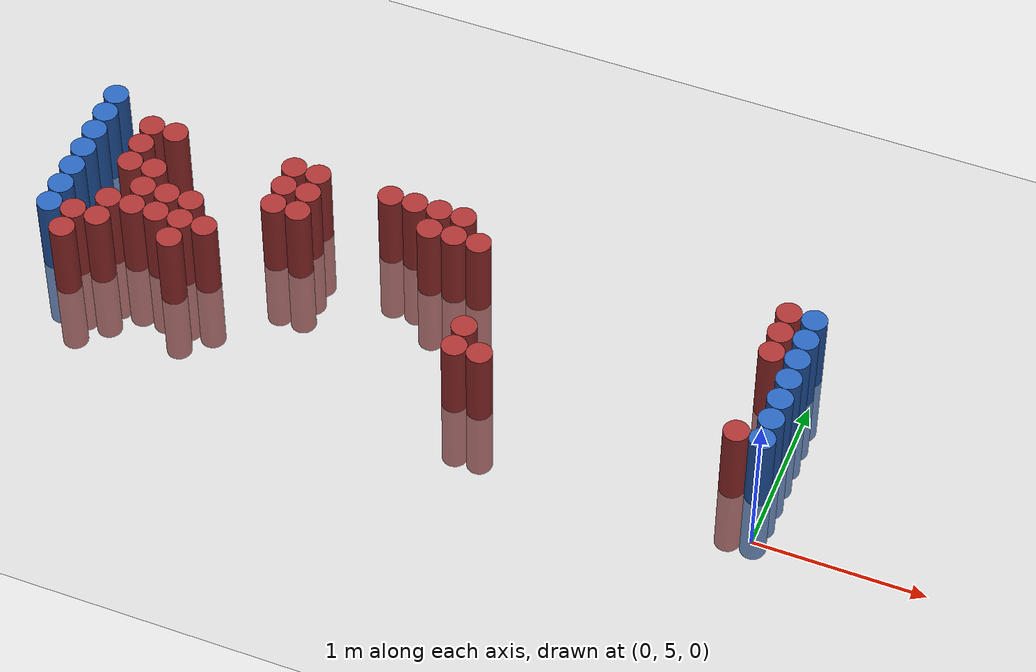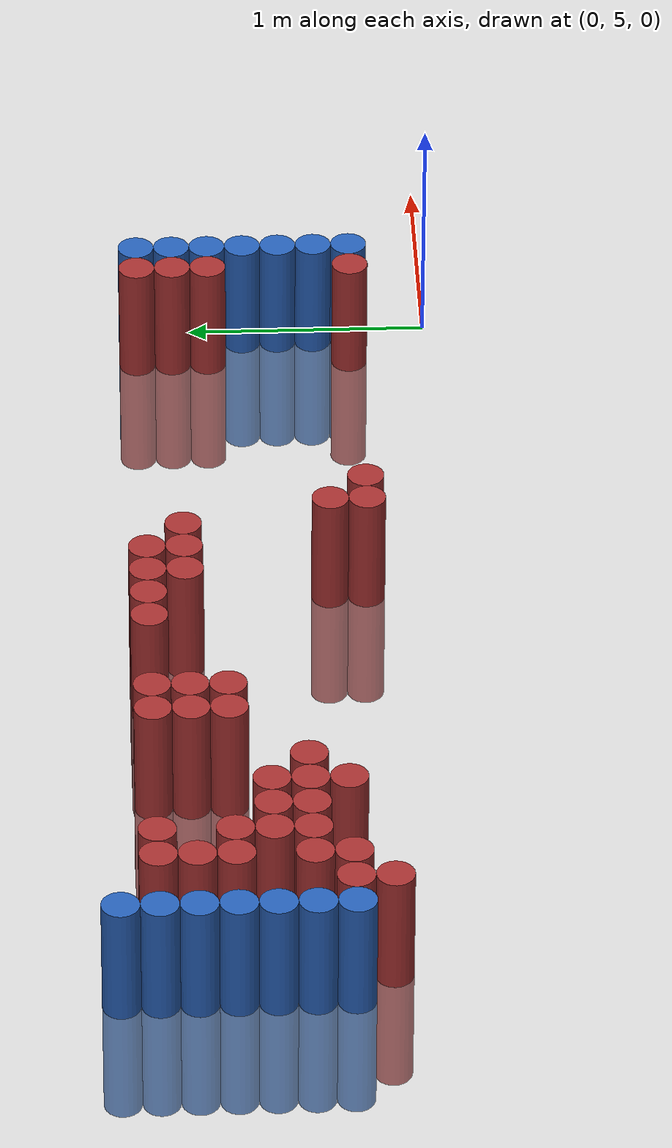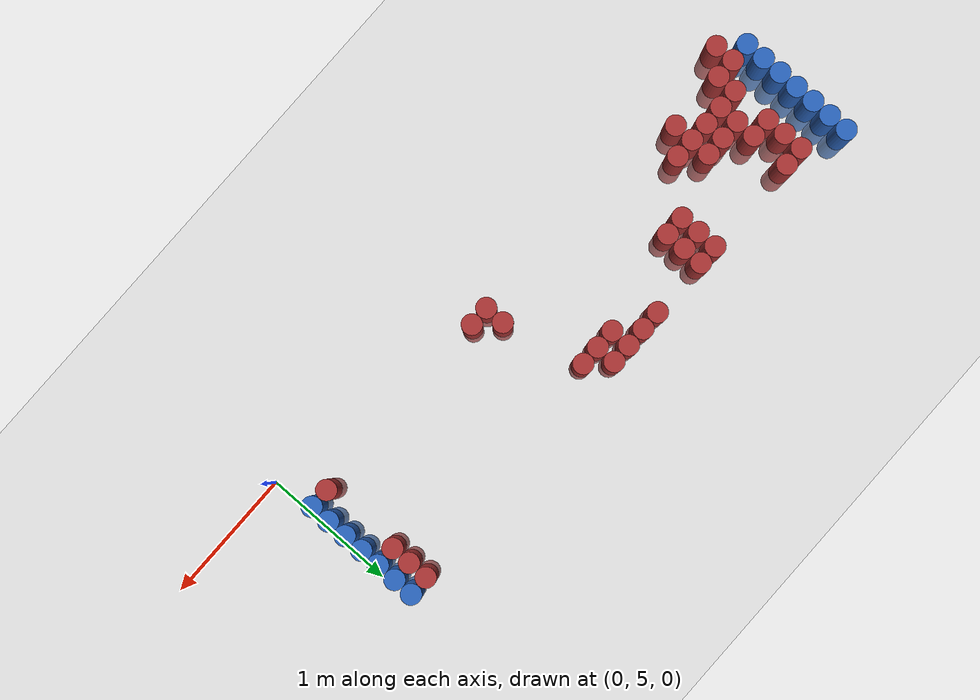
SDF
<sdf version="1.6">
 <world name="default">
  <model name="ground_plane">
   <static>1</static>
   <link name="link">
    <collision name="collision">
     <geometry><plane><normal>0 0 1</normal><size>100 100</size></plane></geometry>
     <surface><friction><ode><mu>100</mu><mu2>50</mu2></ode></friction></surface>
    </collision>
    <visual name="visual">
     <cast_shadows>0</cast_shadows>
     <geometry><plane><normal>0 0 1</normal><size>100 100</size></plane></geometry>
     <material>
      <script><uri>file://media/materials/scripts/gazebo.material</uri><name>Gazebo/Grey</name></script>
     </material>
    </visual>
   </link>
  </model>
  <model name="unit_cylinder_98">
   <static>1</static>
   <pose>-4.425000 5.475000 0.000000 0.000000 0.000000 0.000000</pose>
   <link name="link">
    <inertial>
     <mass>1</mass>
     <inertia><ixx>0.145833</ixx><ixy>0</ixy><ixz>0</ixz><iyy>0.145833</iyy><iyz>0</iyz><izz>0.125</izz></inertia>
    </inertial>
    <collision name="collision">
     <geometry><cylinder><radius>0.075000</radius><length>1</length></cylinder></geometry>
    </collision>
    <visual name="visual">
     <geometry><cylinder><radius>0.075000</radius><length>1</length></cylinder></geometry>
     <material>
      <ambient>0.152000 0.379000 0.720000 1</ambient>
      <diffuse>0.152000 0.379000 0.720000 1</diffuse>
     </material>
     <material>
      <script><name>Gazebo/Grey</name><uri>file://media/materials/scripts/gazebo.material</uri></script>
     </material>
    </visual>
   </link>
  </model>
  <model name="unit_cylinder_99">
   <static>1</static>
   <pose>-4.425000 5.625000 0.000000 0.000000 0.000000 0.000000</pose>
   <link name="link">
    <inertial>
     <mass>1</mass>
     <inertia><ixx>0.145833</ixx><ixy>0</ixy><ixz>0</ixz><iyy>0.145833</iyy><iyz>0</iyz><izz>0.125</izz></inertia>
    </inertial>
    <collision name="collision">
     <geometry><cylinder><radius>0.075000</radius><length>1</length></cylinder></geometry>
    </collision>
    <visual name="visual">
     <geometry><cylinder><radius>0.075000</radius><length>1</length></cylinder></geometry>
     <material>
      <ambient>0.152000 0.379000 0.720000 1</ambient>
      <diffuse>0.152000 0.379000 0.720000 1</diffuse>
     </material>
     <material>
      <script><name>Gazebo/Grey</name><uri>file://media/materials/scripts/gazebo.material</uri></script>
     </material>
    </visual>
   </link>
  </model>
  <model name="unit_cylinder_100">
   <static>1</static>
   <pose>-4.425000 5.775000 0.000000 0.000000 0.000000 0.000000</pose>
   <link name="link">
    <inertial>
     <mass>1</mass>
     <inertia><ixx>0.145833</ixx><ixy>0</ixy><ixz>0</ixz><iyy>0.145833</iyy><iyz>0</iyz><izz>0.125</izz></inertia>
    </inertial>
    <collision name="collision">
     <geometry><cylinder><radius>0.075000</radius><length>1</length></cylinder></geometry>
    </collision>
    <visual name="visual">
     <geometry><cylinder><radius>0.075000</radius><length>1</length></cylinder></geometry>
     <material>
      <ambient>0.152000 0.379000 0.720000 1</ambient>
      <diffuse>0.152000 0.379000 0.720000 1</diffuse>
     </material>
     <material>
      <script><name>Gazebo/Grey</name><uri>file://media/materials/scripts/gazebo.material</uri></script>
     </material>
    </visual>
   </link>
  </model>
  <model name="unit_cylinder_101">
   <static>1</static>
   <pose>-4.425000 5.925000 0.000000 0.000000 0.000000 0.000000</pose>
   <link name="link">
    <inertial>
     <mass>1</mass>
     <inertia><ixx>0.145833</ixx><ixy>0</ixy><ixz>0</ixz><iyy>0.145833</iyy><iyz>0</iyz><izz>0.125</izz></inertia>
    </inertial>
    <collision name="collision">
     <geometry><cylinder><radius>0.075000</radius><length>1</length></cylinder></geometry>
    </collision>
    <visual name="visual">
     <geometry><cylinder><radius>0.075000</radius><length>1</length></cylinder></geometry>
     <material>
      <ambient>0.152000 0.379000 0.720000 1</ambient>
      <diffuse>0.152000 0.379000 0.720000 1</diffuse>
     </material>
     <material>
      <script><name>Gazebo/Grey</name><uri>file://media/materials/scripts/gazebo.material</uri></script>
     </material>
    </visual>
   </link>
  </model>
  <model name="unit_cylinder_102">
   <static>1</static>
   <pose>-4.425000 6.075000 0.000000 0.000000 0.000000 0.000000</pose>
   <link name="link">
    <inertial>
     <mass>1</mass>
     <inertia><ixx>0.145833</ixx><ixy>0</ixy><ixz>0</ixz><iyy>0.145833</iyy><iyz>0</iyz><izz>0.125</izz></inertia>
    </inertial>
    <collision name="collision">
     <geometry><cylinder><radius>0.075000</radius><length>1</length></cylinder></geometry>
    </collision>
    <visual name="visual">
     <geometry><cylinder><radius>0.075000</radius><length>1</length></cylinder></geometry>
     <material>
      <ambient>0.152000 0.379000 0.720000 1</ambient>
      <diffuse>0.152000 0.379000 0.720000 1</diffuse>
     </material>
     <material>
      <script><name>Gazebo/Grey</name><uri>file://media/materials/scripts/gazebo.material</uri></script>
     </material>
    </visual>
   </link>
  </model>
  <model name="unit_cylinder_103">
   <static>1</static>
   <pose>-4.425000 6.225000 0.000000 0.000000 0.000000 0.000000</pose>
   <link name="link">
    <inertial>
     <mass>1</mass>
     <inertia><ixx>0.145833</ixx><ixy>0</ixy><ixz>0</ixz><iyy>0.145833</iyy><iyz>0</iyz><izz>0.125</izz></inertia>
    </inertial>
    <collision name="collision">
     <geometry><cylinder><radius>0.075000</radius><length>1</length></cylinder></geometry>
    </collision>
    <visual name="visual">
     <geometry><cylinder><radius>0.075000</radius><length>1</length></cylinder></geometry>
     <material>
      <ambient>0.152000 0.379000 0.720000 1</ambient>
      <diffuse>0.152000 0.379000 0.720000 1</diffuse>
     </material>
     <material>
      <script><name>Gazebo/Grey</name><uri>file://media/materials/scripts/gazebo.material</uri></script>
     </material>
    </visual>
   </link>
  </model>
  <model name="unit_cylinder_104">
   <static>1</static>
   <pose>-4.425000 6.375000 0.000000 0.000000 0.000000 0.000000</pose>
   <link name="link">
    <inertial>
     <mass>1</mass>
     <inertia><ixx>0.145833</ixx><ixy>0</ixy><ixz>0</ixz><iyy>0.145833</iyy><iyz>0</iyz><izz>0.125</izz></inertia>
    </inertial>
    <collision name="collision">
     <geometry><cylinder><radius>0.075000</radius><length>1</length></cylinder></geometry>
    </collision>
    <visual name="visual">
     <geometry><cylinder><radius>0.075000</radius><length>1</length></cylinder></geometry>
     <material>
      <ambient>0.152000 0.379000 0.720000 1</ambient>
      <diffuse>0.152000 0.379000 0.720000 1</diffuse>
     </material>
     <material>
      <script><name>Gazebo/Grey</name><uri>file://media/materials/scripts/gazebo.material</uri></script>
     </material>
    </visual>
   </link>
  </model>
  <model name="unit_cylinder_126">
   <static>1</static>
   <pose>-4.275000 5.325000 0.000000 0.000000 0.000000 0.000000</pose>
   <link name="link">
    <inertial>
     <mass>1</mass>
     <inertia><ixx>0.145833</ixx><ixy>0</ixy><ixz>0</ixz><iyy>0.145833</iyy><iyz>0</iyz><izz>0.125</izz></inertia>
    </inertial>
    <collision name="collision">
     <geometry><cylinder><radius>0.075000</radius><length>1</length></cylinder></geometry>
    </collision>
    <visual name="visual">
     <geometry><cylinder><radius>0.075000</radius><length>1</length></cylinder></geometry>
     <material>
      <ambient>0.648000 0.192000 0.192000 1</ambient>
      <diffuse>0.648000 0.192000 0.192000 1</diffuse>
     </material>
     <material>
      <script><name>Gazebo/Grey</name><uri>file://media/materials/scripts/gazebo.material</uri></script>
     </material>
    </visual>
   </link>
  </model>
  <model name="unit_cylinder_127">
   <static>1</static>
   <pose>-4.275000 5.475000 0.000000 0.000000 0.000000 0.000000</pose>
   <link name="link">
    <inertial>
     <mass>1</mass>
     <inertia><ixx>0.145833</ixx><ixy>0</ixy><ixz>0</ixz><iyy>0.145833</iyy><iyz>0</iyz><izz>0.125</izz></inertia>
    </inertial>
    <collision name="collision">
     <geometry><cylinder><radius>0.075000</radius><length>1</length></cylinder></geometry>
    </collision>
    <visual name="visual">
     <geometry><cylinder><radius>0.075000</radius><length>1</length></cylinder></geometry>
     <material>
      <ambient>0.648000 0.192000 0.192000 1</ambient>
      <diffuse>0.648000 0.192000 0.192000 1</diffuse>
     </material>
     <material>
      <script><name>Gazebo/Grey</name><uri>file://media/materials/scripts/gazebo.material</uri></script>
     </material>
    </visual>
   </link>
  </model>
  <model name="unit_cylinder_141">
   <static>1</static>
   <pose>-4.125000 5.475000 0.000000 0.000000 0.000000 0.000000</pose>
   <link name="link">
    <inertial>
     <mass>1</mass>
     <inertia><ixx>0.145833</ixx><ixy>0</ixy><ixz>0</ixz><iyy>0.145833</iyy><iyz>0</iyz><izz>0.125</izz></inertia>
    </inertial>
    <collision name="collision">
     <geometry><cylinder><radius>0.075000</radius><length>1</length></cylinder></geometry>
    </collision>
    <visual name="visual">
     <geometry><cylinder><radius>0.075000</radius><length>1</length></cylinder></geometry>
     <material>
      <ambient>0.648000 0.192000 0.192000 1</ambient>
      <diffuse>0.648000 0.192000 0.192000 1</diffuse>
     </material>
     <material>
      <script><name>Gazebo/Grey</name><uri>file://media/materials/scripts/gazebo.material</uri></script>
     </material>
    </visual>
   </link>
  </model>
  <model name="unit_cylinder_142">
   <static>1</static>
   <pose>-4.125000 5.625000 0.000000 0.000000 0.000000 0.000000</pose>
   <link name="link">
    <inertial>
     <mass>1</mass>
     <inertia><ixx>0.145833</ixx><ixy>0</ixy><ixz>0</ixz><iyy>0.145833</iyy><iyz>0</iyz><izz>0.125</izz></inertia>
    </inertial>
    <collision name="collision">
     <geometry><cylinder><radius>0.075000</radius><length>1</length></cylinder></geometry>
    </collision>
    <visual name="visual">
     <geometry><cylinder><radius>0.075000</radius><length>1</length></cylinder></geometry>
     <material>
      <ambient>0.648000 0.192000 0.192000 1</ambient>
      <diffuse>0.648000 0.192000 0.192000 1</diffuse>
     </material>
     <material>
      <script><name>Gazebo/Grey</name><uri>file://media/materials/scripts/gazebo.material</uri></script>
     </material>
    </visual>
   </link>
  </model>
  <model name="unit_cylinder_143">
   <static>1</static>
   <pose>-4.125000 5.925000 0.000000 0.000000 0.000000 0.000000</pose>
   <link name="link">
    <inertial>
     <mass>1</mass>
     <inertia><ixx>0.145833</ixx><ixy>0</ixy><ixz>0</ixz><iyy>0.145833</iyy><iyz>0</iyz><izz>0.125</izz></inertia>
    </inertial>
    <collision name="collision">
     <geometry><cylinder><radius>0.075000</radius><length>1</length></cylinder></geometry>
    </collision>
    <visual name="visual">
     <geometry><cylinder><radius>0.075000</radius><length>1</length></cylinder></geometry>
     <material>
      <ambient>0.648000 0.192000 0.192000 1</ambient>
      <diffuse>0.648000 0.192000 0.192000 1</diffuse>
     </material>
     <material>
      <script><name>Gazebo/Grey</name><uri>file://media/materials/scripts/gazebo.material</uri></script>
     </material>
    </visual>
   </link>
  </model>
  <model name="unit_cylinder_144">
   <static>1</static>
   <pose>-4.125000 6.075000 0.000000 0.000000 0.000000 0.000000</pose>
   <link name="link">
    <inertial>
     <mass>1</mass>
     <inertia><ixx>0.145833</ixx><ixy>0</ixy><ixz>0</ixz><iyy>0.145833</iyy><iyz>0</iyz><izz>0.125</izz></inertia>
    </inertial>
    <collision name="collision">
     <geometry><cylinder><radius>0.075000</radius><length>1</length></cylinder></geometry>
    </collision>
    <visual name="visual">
     <geometry><cylinder><radius>0.075000</radius><length>1</length></cylinder></geometry>
     <material>
      <ambient>0.648000 0.192000 0.192000 1</ambient>
      <diffuse>0.648000 0.192000 0.192000 1</diffuse>
     </material>
     <material>
      <script><name>Gazebo/Grey</name><uri>file://media/materials/scripts/gazebo.material</uri></script>
     </material>
    </visual>
   </link>
  </model>
  <model name="unit_cylinder_145">
   <static>1</static>
   <pose>-4.125000 6.225000 0.000000 0.000000 0.000000 0.000000</pose>
   <link name="link">
    <inertial>
     <mass>1</mass>
     <inertia><ixx>0.145833</ixx><ixy>0</ixy><ixz>0</ixz><iyy>0.145833</iyy><iyz>0</iyz><izz>0.125</izz></inertia>
    </inertial>
    <collision name="collision">
     <geometry><cylinder><radius>0.075000</radius><length>1</length></cylinder></geometry>
    </collision>
    <visual name="visual">
     <geometry><cylinder><radius>0.075000</radius><length>1</length></cylinder></geometry>
     <material>
      <ambient>0.648000 0.192000 0.192000 1</ambient>
      <diffuse>0.648000 0.192000 0.192000 1</diffuse>
     </material>
     <material>
      <script><name>Gazebo/Grey</name><uri>file://media/materials/scripts/gazebo.material</uri></script>
     </material>
    </visual>
   </link>
  </model>
  <model name="unit_cylinder_152">
   <static>1</static>
   <pose>-3.975000 5.625000 0.000000 0.000000 0.000000 0.000000</pose>
   <link name="link">
    <inertial>
     <mass>1</mass>
     <inertia><ixx>0.145833</ixx><ixy>0</ixy><ixz>0</ixz><iyy>0.145833</iyy><iyz>0</iyz><izz>0.125</izz></inertia>
    </inertial>
    <collision name="collision">
     <geometry><cylinder><radius>0.075000</radius><length>1</length></cylinder></geometry>
    </collision>
    <visual name="visual">
     <geometry><cylinder><radius>0.075000</radius><length>1</length></cylinder></geometry>
     <material>
      <ambient>0.648000 0.192000 0.192000 1</ambient>
      <diffuse>0.648000 0.192000 0.192000 1</diffuse>
     </material>
     <material>
      <script><name>Gazebo/Grey</name><uri>file://media/materials/scripts/gazebo.material</uri></script>
     </material>
    </visual>
   </link>
  </model>
  <model name="unit_cylinder_153">
   <static>1</static>
   <pose>-3.975000 5.775000 0.000000 0.000000 0.000000 0.000000</pose>
   <link name="link">
    <inertial>
     <mass>1</mass>
     <inertia><ixx>0.145833</ixx><ixy>0</ixy><ixz>0</ixz><iyy>0.145833</iyy><iyz>0</iyz><izz>0.125</izz></inertia>
    </inertial>
    <collision name="collision">
     <geometry><cylinder><radius>0.075000</radius><length>1</length></cylinder></geometry>
    </collision>
    <visual name="visual">
     <geometry><cylinder><radius>0.075000</radius><length>1</length></cylinder></geometry>
     <material>
      <ambient>0.648000 0.192000 0.192000 1</ambient>
      <diffuse>0.648000 0.192000 0.192000 1</diffuse>
     </material>
     <material>
      <script><name>Gazebo/Grey</name><uri>file://media/materials/scripts/gazebo.material</uri></script>
     </material>
    </visual>
   </link>
  </model>
  <model name="unit_cylinder_154">
   <static>1</static>
   <pose>-3.975000 5.925000 0.000000 0.000000 0.000000 0.000000</pose>
   <link name="link">
    <inertial>
     <mass>1</mass>
     <inertia><ixx>0.145833</ixx><ixy>0</ixy><ixz>0</ixz><iyy>0.145833</iyy><iyz>0</iyz><izz>0.125</izz></inertia>
    </inertial>
    <collision name="collision">
     <geometry><cylinder><radius>0.075000</radius><length>1</length></cylinder></geometry>
    </collision>
    <visual name="visual">
     <geometry><cylinder><radius>0.075000</radius><length>1</length></cylinder></geometry>
     <material>
      <ambient>0.648000 0.192000 0.192000 1</ambient>
      <diffuse>0.648000 0.192000 0.192000 1</diffuse>
     </material>
     <material>
      <script><name>Gazebo/Grey</name><uri>file://media/materials/scripts/gazebo.material</uri></script>
     </material>
    </visual>
   </link>
  </model>
  <model name="unit_cylinder_155">
   <static>1</static>
   <pose>-3.975000 6.225000 0.000000 0.000000 0.000000 0.000000</pose>
   <link name="link">
    <inertial>
     <mass>1</mass>
     <inertia><ixx>0.145833</ixx><ixy>0</ixy><ixz>0</ixz><iyy>0.145833</iyy><iyz>0</iyz><izz>0.125</izz></inertia>
    </inertial>
    <collision name="collision">
     <geometry><cylinder><radius>0.075000</radius><length>1</length></cylinder></geometry>
    </collision>
    <visual name="visual">
     <geometry><cylinder><radius>0.075000</radius><length>1</length></cylinder></geometry>
     <material>
      <ambient>0.648000 0.192000 0.192000 1</ambient>
      <diffuse>0.648000 0.192000 0.192000 1</diffuse>
     </material>
     <material>
      <script><name>Gazebo/Grey</name><uri>file://media/materials/scripts/gazebo.material</uri></script>
     </material>
    </visual>
   </link>
  </model>
  <model name="unit_cylinder_160">
   <static>1</static>
   <pose>-3.825000 5.625000 0.000000 0.000000 0.000000 0.000000</pose>
   <link name="link">
    <inertial>
     <mass>1</mass>
     <inertia><ixx>0.145833</ixx><ixy>0</ixy><ixz>0</ixz><iyy>0.145833</iyy><iyz>0</iyz><izz>0.125</izz></inertia>
    </inertial>
    <collision name="collision">
     <geometry><cylinder><radius>0.075000</radius><length>1</length></cylinder></geometry>
    </collision>
    <visual name="visual">
     <geometry><cylinder><radius>0.075000</radius><length>1</length></cylinder></geometry>
     <material>
      <ambient>0.648000 0.192000 0.192000 1</ambient>
      <diffuse>0.648000 0.192000 0.192000 1</diffuse>
     </material>
     <material>
      <script><name>Gazebo/Grey</name><uri>file://media/materials/scripts/gazebo.material</uri></script>
     </material>
    </visual>
   </link>
  </model>
  <model name="unit_cylinder_161">
   <static>1</static>
   <pose>-3.825000 5.775000 0.000000 0.000000 0.000000 0.000000</pose>
   <link name="link">
    <inertial>
     <mass>1</mass>
     <inertia><ixx>0.145833</ixx><ixy>0</ixy><ixz>0</ixz><iyy>0.145833</iyy><iyz>0</iyz><izz>0.125</izz></inertia>
    </inertial>
    <collision name="collision">
     <geometry><cylinder><radius>0.075000</radius><length>1</length></cylinder></geometry>
    </collision>
    <visual name="visual">
     <geometry><cylinder><radius>0.075000</radius><length>1</length></cylinder></geometry>
     <material>
      <ambient>0.648000 0.192000 0.192000 1</ambient>
      <diffuse>0.648000 0.192000 0.192000 1</diffuse>
     </material>
     <material>
      <script><name>Gazebo/Grey</name><uri>file://media/materials/scripts/gazebo.material</uri></script>
     </material>
    </visual>
   </link>
  </model>
  <model name="unit_cylinder_168">
   <static>1</static>
   <pose>-3.675000 5.475000 0.000000 0.000000 0.000000 0.000000</pose>
   <link name="link">
    <inertial>
     <mass>1</mass>
     <inertia><ixx>0.145833</ixx><ixy>0</ixy><ixz>0</ixz><iyy>0.145833</iyy><iyz>0</iyz><izz>0.125</izz></inertia>
    </inertial>
    <collision name="collision">
     <geometry><cylinder><radius>0.075000</radius><length>1</length></cylinder></geometry>
    </collision>
    <visual name="visual">
     <geometry><cylinder><radius>0.075000</radius><length>1</length></cylinder></geometry>
     <material>
      <ambient>0.648000 0.192000 0.192000 1</ambient>
      <diffuse>0.648000 0.192000 0.192000 1</diffuse>
     </material>
     <material>
      <script><name>Gazebo/Grey</name><uri>file://media/materials/scripts/gazebo.material</uri></script>
     </material>
    </visual>
   </link>
  </model>
  <model name="unit_cylinder_169">
   <static>1</static>
   <pose>-3.675000 5.625000 0.000000 0.000000 0.000000 0.000000</pose>
   <link name="link">
    <inertial>
     <mass>1</mass>
     <inertia><ixx>0.145833</ixx><ixy>0</ixy><ixz>0</ixz><iyy>0.145833</iyy><iyz>0</iyz><izz>0.125</izz></inertia>
    </inertial>
    <collision name="collision">
     <geometry><cylinder><radius>0.075000</radius><length>1</length></cylinder></geometry>
    </collision>
    <visual name="visual">
     <geometry><cylinder><radius>0.075000</radius><length>1</length></cylinder></geometry>
     <material>
      <ambient>0.648000 0.192000 0.192000 1</ambient>
      <diffuse>0.648000 0.192000 0.192000 1</diffuse>
     </material>
     <material>
      <script><name>Gazebo/Grey</name><uri>file://media/materials/scripts/gazebo.material</uri></script>
     </material>
    </visual>
   </link>
  </model>
  <model name="unit_cylinder_170">
   <static>1</static>
   <pose>-3.675000 5.775000 0.000000 0.000000 0.000000 0.000000</pose>
   <link name="link">
    <inertial>
     <mass>1</mass>
     <inertia><ixx>0.145833</ixx><ixy>0</ixy><ixz>0</ixz><iyy>0.145833</iyy><iyz>0</iyz><izz>0.125</izz></inertia>
    </inertial>
    <collision name="collision">
     <geometry><cylinder><radius>0.075000</radius><length>1</length></cylinder></geometry>
    </collision>
    <visual name="visual">
     <geometry><cylinder><radius>0.075000</radius><length>1</length></cylinder></geometry>
     <material>
      <ambient>0.648000 0.192000 0.192000 1</ambient>
      <diffuse>0.648000 0.192000 0.192000 1</diffuse>
     </material>
     <material>
      <script><name>Gazebo/Grey</name><uri>file://media/materials/scripts/gazebo.material</uri></script>
     </material>
    </visual>
   </link>
  </model>
  <model name="unit_cylinder_175">
   <static>1</static>
   <pose>-3.525000 5.625000 0.000000 0.000000 0.000000 0.000000</pose>
   <link name="link">
    <inertial>
     <mass>1</mass>
     <inertia><ixx>0.145833</ixx><ixy>0</ixy><ixz>0</ixz><iyy>0.145833</iyy><iyz>0</iyz><izz>0.125</izz></inertia>
    </inertial>
    <collision name="collision">
     <geometry><cylinder><radius>0.075000</radius><length>1</length></cylinder></geometry>
    </collision>
    <visual name="visual">
     <geometry><cylinder><radius>0.075000</radius><length>1</length></cylinder></geometry>
     <material>
      <ambient>0.648000 0.192000 0.192000 1</ambient>
      <diffuse>0.648000 0.192000 0.192000 1</diffuse>
     </material>
     <material>
      <script><name>Gazebo/Grey</name><uri>file://media/materials/scripts/gazebo.material</uri></script>
     </material>
    </visual>
   </link>
  </model>
  <model name="unit_cylinder_194">
   <static>1</static>
   <pose>-3.225000 5.925000 0.000000 0.000000 0.000000 0.000000</pose>
   <link name="link">
    <inertial>
     <mass>1</mass>
     <inertia><ixx>0.145833</ixx><ixy>0</ixy><ixz>0</ixz><iyy>0.145833</iyy><iyz>0</iyz><izz>0.125</izz></inertia>
    </inertial>
    <collision name="collision">
     <geometry><cylinder><radius>0.075000</radius><length>1</length></cylinder></geometry>
    </collision>
    <visual name="visual">
     <geometry><cylinder><radius>0.075000</radius><length>1</length></cylinder></geometry>
     <material>
      <ambient>0.648000 0.192000 0.192000 1</ambient>
      <diffuse>0.648000 0.192000 0.192000 1</diffuse>
     </material>
     <material>
      <script><name>Gazebo/Grey</name><uri>file://media/materials/scripts/gazebo.material</uri></script>
     </material>
    </visual>
   </link>
  </model>
  <model name="unit_cylinder_195">
   <static>1</static>
   <pose>-3.225000 6.075000 0.000000 0.000000 0.000000 0.000000</pose>
   <link name="link">
    <inertial>
     <mass>1</mass>
     <inertia><ixx>0.145833</ixx><ixy>0</ixy><ixz>0</ixz><iyy>0.145833</iyy><iyz>0</iyz><izz>0.125</izz></inertia>
    </inertial>
    <collision name="collision">
     <geometry><cylinder><radius>0.075000</radius><length>1</length></cylinder></geometry>
    </collision>
    <visual name="visual">
     <geometry><cylinder><radius>0.075000</radius><length>1</length></cylinder></geometry>
     <material>
      <ambient>0.648000 0.192000 0.192000 1</ambient>
      <diffuse>0.648000 0.192000 0.192000 1</diffuse>
     </material>
     <material>
      <script><name>Gazebo/Grey</name><uri>file://media/materials/scripts/gazebo.material</uri></script>
     </material>
    </visual>
   </link>
  </model>
  <model name="unit_cylinder_196">
   <static>1</static>
   <pose>-3.225000 6.225000 0.000000 0.000000 0.000000 0.000000</pose>
   <link name="link">
    <inertial>
     <mass>1</mass>
     <inertia><ixx>0.145833</ixx><ixy>0</ixy><ixz>0</ixz><iyy>0.145833</iyy><iyz>0</iyz><izz>0.125</izz></inertia>
    </inertial>
    <collision name="collision">
     <geometry><cylinder><radius>0.075000</radius><length>1</length></cylinder></geometry>
    </collision>
    <visual name="visual">
     <geometry><cylinder><radius>0.075000</radius><length>1</length></cylinder></geometry>
     <material>
      <ambient>0.648000 0.192000 0.192000 1</ambient>
      <diffuse>0.648000 0.192000 0.192000 1</diffuse>
     </material>
     <material>
      <script><name>Gazebo/Grey</name><uri>file://media/materials/scripts/gazebo.material</uri></script>
     </material>
    </visual>
   </link>
  </model>
  <model name="unit_cylinder_205">
   <static>1</static>
   <pose>-3.075000 5.925000 0.000000 0.000000 0.000000 0.000000</pose>
   <link name="link">
    <inertial>
     <mass>1</mass>
     <inertia><ixx>0.145833</ixx><ixy>0</ixy><ixz>0</ixz><iyy>0.145833</iyy><iyz>0</iyz><izz>0.125</izz></inertia>
    </inertial>
    <collision name="collision">
     <geometry><cylinder><radius>0.075000</radius><length>1</length></cylinder></geometry>
    </collision>
    <visual name="visual">
     <geometry><cylinder><radius>0.075000</radius><length>1</length></cylinder></geometry>
     <material>
      <ambient>0.648000 0.192000 0.192000 1</ambient>
      <diffuse>0.648000 0.192000 0.192000 1</diffuse>
     </material>
     <material>
      <script><name>Gazebo/Grey</name><uri>file://media/materials/scripts/gazebo.material</uri></script>
     </material>
    </visual>
   </link>
  </model>
  <model name="unit_cylinder_206">
   <static>1</static>
   <pose>-3.075000 6.075000 0.000000 0.000000 0.000000 0.000000</pose>
   <link name="link">
    <inertial>
     <mass>1</mass>
     <inertia><ixx>0.145833</ixx><ixy>0</ixy><ixz>0</ixz><iyy>0.145833</iyy><iyz>0</iyz><izz>0.125</izz></inertia>
    </inertial>
    <collision name="collision">
     <geometry><cylinder><radius>0.075000</radius><length>1</length></cylinder></geometry>
    </collision>
    <visual name="visual">
     <geometry><cylinder><radius>0.075000</radius><length>1</length></cylinder></geometry>
     <material>
      <ambient>0.648000 0.192000 0.192000 1</ambient>
      <diffuse>0.648000 0.192000 0.192000 1</diffuse>
     </material>
     <material>
      <script><name>Gazebo/Grey</name><uri>file://media/materials/scripts/gazebo.material</uri></script>
     </material>
    </visual>
   </link>
  </model>
  <model name="unit_cylinder_207">
   <static>1</static>
   <pose>-3.075000 6.225000 0.000000 0.000000 0.000000 0.000000</pose>
   <link name="link">
    <inertial>
     <mass>1</mass>
     <inertia><ixx>0.145833</ixx><ixy>0</ixy><ixz>0</ixz><iyy>0.145833</iyy><iyz>0</iyz><izz>0.125</izz></inertia>
    </inertial>
    <collision name="collision">
     <geometry><cylinder><radius>0.075000</radius><length>1</length></cylinder></geometry>
    </collision>
    <visual name="visual">
     <geometry><cylinder><radius>0.075000</radius><length>1</length></cylinder></geometry>
     <material>
      <ambient>0.648000 0.192000 0.192000 1</ambient>
      <diffuse>0.648000 0.192000 0.192000 1</diffuse>
     </material>
     <material>
      <script><name>Gazebo/Grey</name><uri>file://media/materials/scripts/gazebo.material</uri></script>
     </material>
    </visual>
   </link>
  </model>
  <model name="unit_cylinder_225">
   <static>1</static>
   <pose>-2.625000 6.225000 0.000000 0.000000 0.000000 0.000000</pose>
   <link name="link">
    <inertial>
     <mass>1</mass>
     <inertia><ixx>0.145833</ixx><ixy>0</ixy><ixz>0</ixz><iyy>0.145833</iyy><iyz>0</iyz><izz>0.125</izz></inertia>
    </inertial>
    <collision name="collision">
     <geometry><cylinder><radius>0.075000</radius><length>1</length></cylinder></geometry>
    </collision>
    <visual name="visual">
     <geometry><cylinder><radius>0.075000</radius><length>1</length></cylinder></geometry>
     <material>
      <ambient>0.648000 0.192000 0.192000 1</ambient>
      <diffuse>0.648000 0.192000 0.192000 1</diffuse>
     </material>
     <material>
      <script><name>Gazebo/Grey</name><uri>file://media/materials/scripts/gazebo.material</uri></script>
     </material>
    </visual>
   </link>
  </model>
  <model name="unit_cylinder_235">
   <static>1</static>
   <pose>-2.475000 6.225000 0.000000 0.000000 0.000000 0.000000</pose>
   <link name="link">
    <inertial>
     <mass>1</mass>
     <inertia><ixx>0.145833</ixx><ixy>0</ixy><ixz>0</ixz><iyy>0.145833</iyy><iyz>0</iyz><izz>0.125</izz></inertia>
    </inertial>
    <collision name="collision">
     <geometry><cylinder><radius>0.075000</radius><length>1</length></cylinder></geometry>
    </collision>
    <visual name="visual">
     <geometry><cylinder><radius>0.075000</radius><length>1</length></cylinder></geometry>
     <material>
      <ambient>0.648000 0.192000 0.192000 1</ambient>
      <diffuse>0.648000 0.192000 0.192000 1</diffuse>
     </material>
     <material>
      <script><name>Gazebo/Grey</name><uri>file://media/materials/scripts/gazebo.material</uri></script>
     </material>
    </visual>
   </link>
  </model>
  <model name="unit_cylinder_247">
   <static>1</static>
   <pose>-2.325000 6.075000 0.000000 0.000000 0.000000 0.000000</pose>
   <link name="link">
    <inertial>
     <mass>1</mass>
     <inertia><ixx>0.145833</ixx><ixy>0</ixy><ixz>0</ixz><iyy>0.145833</iyy><iyz>0</iyz><izz>0.125</izz></inertia>
    </inertial>
    <collision name="collision">
     <geometry><cylinder><radius>0.075000</radius><length>1</length></cylinder></geometry>
    </collision>
    <visual name="visual">
     <geometry><cylinder><radius>0.075000</radius><length>1</length></cylinder></geometry>
     <material>
      <ambient>0.648000 0.192000 0.192000 1</ambient>
      <diffuse>0.648000 0.192000 0.192000 1</diffuse>
     </material>
     <material>
      <script><name>Gazebo/Grey</name><uri>file://media/materials/scripts/gazebo.material</uri></script>
     </material>
    </visual>
   </link>
  </model>
  <model name="unit_cylinder_248">
   <static>1</static>
   <pose>-2.325000 6.225000 0.000000 0.000000 0.000000 0.000000</pose>
   <link name="link">
    <inertial>
     <mass>1</mass>
     <inertia><ixx>0.145833</ixx><ixy>0</ixy><ixz>0</ixz><iyy>0.145833</iyy><iyz>0</iyz><izz>0.125</izz></inertia>
    </inertial>
    <collision name="collision">
     <geometry><cylinder><radius>0.075000</radius><length>1</length></cylinder></geometry>
    </collision>
    <visual name="visual">
     <geometry><cylinder><radius>0.075000</radius><length>1</length></cylinder></geometry>
     <material>
      <ambient>0.648000 0.192000 0.192000 1</ambient>
      <diffuse>0.648000 0.192000 0.192000 1</diffuse>
     </material>
     <material>
      <script><name>Gazebo/Grey</name><uri>file://media/materials/scripts/gazebo.material</uri></script>
     </material>
    </visual>
   </link>
  </model>
  <model name="unit_cylinder_256">
   <static>1</static>
   <pose>-2.175000 6.075000 0.000000 0.000000 0.000000 0.000000</pose>
   <link name="link">
    <inertial>
     <mass>1</mass>
     <inertia><ixx>0.145833</ixx><ixy>0</ixy><ixz>0</ixz><iyy>0.145833</iyy><iyz>0</iyz><izz>0.125</izz></inertia>
    </inertial>
    <collision name="collision">
     <geometry><cylinder><radius>0.075000</radius><length>1</length></cylinder></geometry>
    </collision>
    <visual name="visual">
     <geometry><cylinder><radius>0.075000</radius><length>1</length></cylinder></geometry>
     <material>
      <ambient>0.648000 0.192000 0.192000 1</ambient>
      <diffuse>0.648000 0.192000 0.192000 1</diffuse>
     </material>
     <material>
      <script><name>Gazebo/Grey</name><uri>file://media/materials/scripts/gazebo.material</uri></script>
     </material>
    </visual>
   </link>
  </model>
  <model name="unit_cylinder_257">
   <static>1</static>
   <pose>-2.175000 6.225000 0.000000 0.000000 0.000000 0.000000</pose>
   <link name="link">
    <inertial>
     <mass>1</mass>
     <inertia><ixx>0.145833</ixx><ixy>0</ixy><ixz>0</ixz><iyy>0.145833</iyy><iyz>0</iyz><izz>0.125</izz></inertia>
    </inertial>
    <collision name="collision">
     <geometry><cylinder><radius>0.075000</radius><length>1</length></cylinder></geometry>
    </collision>
    <visual name="visual">
     <geometry><cylinder><radius>0.075000</radius><length>1</length></cylinder></geometry>
     <material>
      <ambient>0.648000 0.192000 0.192000 1</ambient>
      <diffuse>0.648000 0.192000 0.192000 1</diffuse>
     </material>
     <material>
      <script><name>Gazebo/Grey</name><uri>file://media/materials/scripts/gazebo.material</uri></script>
     </material>
    </visual>
   </link>
  </model>
  <model name="unit_cylinder_265">
   <static>1</static>
   <pose>-2.025000 6.075000 0.000000 0.000000 0.000000 0.000000</pose>
   <link name="link">
    <inertial>
     <mass>1</mass>
     <inertia><ixx>0.145833</ixx><ixy>0</ixy><ixz>0</ixz><iyy>0.145833</iyy><iyz>0</iyz><izz>0.125</izz></inertia>
    </inertial>
    <collision name="collision">
     <geometry><cylinder><radius>0.075000</radius><length>1</length></cylinder></geometry>
    </collision>
    <visual name="visual">
     <geometry><cylinder><radius>0.075000</radius><length>1</length></cylinder></geometry>
     <material>
      <ambient>0.648000 0.192000 0.192000 1</ambient>
      <diffuse>0.648000 0.192000 0.192000 1</diffuse>
     </material>
     <material>
      <script><name>Gazebo/Grey</name><uri>file://media/materials/scripts/gazebo.material</uri></script>
     </material>
    </visual>
   </link>
  </model>
  <model name="unit_cylinder_275">
   <static>1</static>
   <pose>-1.875000 5.325000 0.000000 0.000000 0.000000 0.000000</pose>
   <link name="link">
    <inertial>
     <mass>1</mass>
     <inertia><ixx>0.145833</ixx><ixy>0</ixy><ixz>0</ixz><iyy>0.145833</iyy><iyz>0</iyz><izz>0.125</izz></inertia>
    </inertial>
    <collision name="collision">
     <geometry><cylinder><radius>0.075000</radius><length>1</length></cylinder></geometry>
    </collision>
    <visual name="visual">
     <geometry><cylinder><radius>0.075000</radius><length>1</length></cylinder></geometry>
     <material>
      <ambient>0.648000 0.192000 0.192000 1</ambient>
      <diffuse>0.648000 0.192000 0.192000 1</diffuse>
     </material>
     <material>
      <script><name>Gazebo/Grey</name><uri>file://media/materials/scripts/gazebo.material</uri></script>
     </material>
    </visual>
   </link>
  </model>
  <model name="unit_cylinder_276">
   <static>1</static>
   <pose>-1.875000 5.475000 0.000000 0.000000 0.000000 0.000000</pose>
   <link name="link">
    <inertial>
     <mass>1</mass>
     <inertia><ixx>0.145833</ixx><ixy>0</ixy><ixz>0</ixz><iyy>0.145833</iyy><iyz>0</iyz><izz>0.125</izz></inertia>
    </inertial>
    <collision name="collision">
     <geometry><cylinder><radius>0.075000</radius><length>1</length></cylinder></geometry>
    </collision>
    <visual name="visual">
     <geometry><cylinder><radius>0.075000</radius><length>1</length></cylinder></geometry>
     <material>
      <ambient>0.648000 0.192000 0.192000 1</ambient>
      <diffuse>0.648000 0.192000 0.192000 1</diffuse>
     </material>
     <material>
      <script><name>Gazebo/Grey</name><uri>file://media/materials/scripts/gazebo.material</uri></script>
     </material>
    </visual>
   </link>
  </model>
  <model name="unit_cylinder_285">
   <static>1</static>
   <pose>-1.725000 5.325000 0.000000 0.000000 0.000000 0.000000</pose>
   <link name="link">
    <inertial>
     <mass>1</mass>
     <inertia><ixx>0.145833</ixx><ixy>0</ixy><ixz>0</ixz><iyy>0.145833</iyy><iyz>0</iyz><izz>0.125</izz></inertia>
    </inertial>
    <collision name="collision">
     <geometry><cylinder><radius>0.075000</radius><length>1</length></cylinder></geometry>
    </collision>
    <visual name="visual">
     <geometry><cylinder><radius>0.075000</radius><length>1</length></cylinder></geometry>
     <material>
      <ambient>0.648000 0.192000 0.192000 1</ambient>
      <diffuse>0.648000 0.192000 0.192000 1</diffuse>
     </material>
     <material>
      <script><name>Gazebo/Grey</name><uri>file://media/materials/scripts/gazebo.material</uri></script>
     </material>
    </visual>
   </link>
  </model>
  <model name="unit_cylinder_318">
   <static>1</static>
   <pose>-0.225000 5.325000 0.000000 0.000000 0.000000 0.000000</pose>
   <link name="link">
    <inertial>
     <mass>1</mass>
     <inertia><ixx>0.145833</ixx><ixy>0</ixy><ixz>0</ixz><iyy>0.145833</iyy><iyz>0</iyz><izz>0.125</izz></inertia>
    </inertial>
    <collision name="collision">
     <geometry><cylinder><radius>0.075000</radius><length>1</length></cylinder></geometry>
    </collision>
    <visual name="visual">
     <geometry><cylinder><radius>0.075000</radius><length>1</length></cylinder></geometry>
     <material>
      <ambient>0.648000 0.192000 0.192000 1</ambient>
      <diffuse>0.648000 0.192000 0.192000 1</diffuse>
     </material>
     <material>
      <script><name>Gazebo/Grey</name><uri>file://media/materials/scripts/gazebo.material</uri></script>
     </material>
    </visual>
   </link>
  </model>
  <model name="unit_cylinder_319">
   <static>1</static>
   <pose>-0.225000 5.925000 0.000000 0.000000 0.000000 0.000000</pose>
   <link name="link">
    <inertial>
     <mass>1</mass>
     <inertia><ixx>0.145833</ixx><ixy>0</ixy><ixz>0</ixz><iyy>0.145833</iyy><iyz>0</iyz><izz>0.125</izz></inertia>
    </inertial>
    <collision name="collision">
     <geometry><cylinder><radius>0.075000</radius><length>1</length></cylinder></geometry>
    </collision>
    <visual name="visual">
     <geometry><cylinder><radius>0.075000</radius><length>1</length></cylinder></geometry>
     <material>
      <ambient>0.648000 0.192000 0.192000 1</ambient>
      <diffuse>0.648000 0.192000 0.192000 1</diffuse>
     </material>
     <material>
      <script><name>Gazebo/Grey</name><uri>file://media/materials/scripts/gazebo.material</uri></script>
     </material>
    </visual>
   </link>
  </model>
  <model name="unit_cylinder_320">
   <static>1</static>
   <pose>-0.225000 6.075000 0.000000 0.000000 0.000000 0.000000</pose>
   <link name="link">
    <inertial>
     <mass>1</mass>
     <inertia><ixx>0.145833</ixx><ixy>0</ixy><ixz>0</ixz><iyy>0.145833</iyy><iyz>0</iyz><izz>0.125</izz></inertia>
    </inertial>
    <collision name="collision">
     <geometry><cylinder><radius>0.075000</radius><length>1</length></cylinder></geometry>
    </collision>
    <visual name="visual">
     <geometry><cylinder><radius>0.075000</radius><length>1</length></cylinder></geometry>
     <material>
      <ambient>0.648000 0.192000 0.192000 1</ambient>
      <diffuse>0.648000 0.192000 0.192000 1</diffuse>
     </material>
     <material>
      <script><name>Gazebo/Grey</name><uri>file://media/materials/scripts/gazebo.material</uri></script>
     </material>
    </visual>
   </link>
  </model>
  <model name="unit_cylinder_321">
   <static>1</static>
   <pose>-0.225000 6.225000 0.000000 0.000000 0.000000 0.000000</pose>
   <link name="link">
    <inertial>
     <mass>1</mass>
     <inertia><ixx>0.145833</ixx><ixy>0</ixy><ixz>0</ixz><iyy>0.145833</iyy><iyz>0</iyz><izz>0.125</izz></inertia>
    </inertial>
    <collision name="collision">
     <geometry><cylinder><radius>0.075000</radius><length>1</length></cylinder></geometry>
    </collision>
    <visual name="visual">
     <geometry><cylinder><radius>0.075000</radius><length>1</length></cylinder></geometry>
     <material>
      <ambient>0.648000 0.192000 0.192000 1</ambient>
      <diffuse>0.648000 0.192000 0.192000 1</diffuse>
     </material>
     <material>
      <script><name>Gazebo/Grey</name><uri>file://media/materials/scripts/gazebo.material</uri></script>
     </material>
    </visual>
   </link>
  </model>
  <model name="unit_cylinder_328">
   <static>1</static>
   <pose>-0.075000 5.325000 0.000000 0.000000 0.000000 0.000000</pose>
   <link name="link">
    <inertial>
     <mass>1</mass>
     <inertia><ixx>0.145833</ixx><ixy>0</ixy><ixz>0</ixz><iyy>0.145833</iyy><iyz>0</iyz><izz>0.125</izz></inertia>
    </inertial>
    <collision name="collision">
     <geometry><cylinder><radius>0.075000</radius><length>1</length></cylinder></geometry>
    </collision>
    <visual name="visual">
     <geometry><cylinder><radius>0.075000</radius><length>1</length></cylinder></geometry>
     <material>
      <ambient>0.152000 0.379000 0.720000 1</ambient>
      <diffuse>0.152000 0.379000 0.720000 1</diffuse>
     </material>
     <material>
      <script><name>Gazebo/Grey</name><uri>file://media/materials/scripts/gazebo.material</uri></script>
     </material>
    </visual>
   </link>
  </model>
  <model name="unit_cylinder_329">
   <static>1</static>
   <pose>-0.075000 5.475000 0.000000 0.000000 0.000000 0.000000</pose>
   <link name="link">
    <inertial>
     <mass>1</mass>
     <inertia><ixx>0.145833</ixx><ixy>0</ixy><ixz>0</ixz><iyy>0.145833</iyy><iyz>0</iyz><izz>0.125</izz></inertia>
    </inertial>
    <collision name="collision">
     <geometry><cylinder><radius>0.075000</radius><length>1</length></cylinder></geometry>
    </collision>
    <visual name="visual">
     <geometry><cylinder><radius>0.075000</radius><length>1</length></cylinder></geometry>
     <material>
      <ambient>0.152000 0.379000 0.720000 1</ambient>
      <diffuse>0.152000 0.379000 0.720000 1</diffuse>
     </material>
     <material>
      <script><name>Gazebo/Grey</name><uri>file://media/materials/scripts/gazebo.material</uri></script>
     </material>
    </visual>
   </link>
  </model>
  <model name="unit_cylinder_330">
   <static>1</static>
   <pose>-0.075000 5.625000 0.000000 0.000000 0.000000 0.000000</pose>
   <link name="link">
    <inertial>
     <mass>1</mass>
     <inertia><ixx>0.145833</ixx><ixy>0</ixy><ixz>0</ixz><iyy>0.145833</iyy><iyz>0</iyz><izz>0.125</izz></inertia>
    </inertial>
    <collision name="collision">
     <geometry><cylinder><radius>0.075000</radius><length>1</length></cylinder></geometry>
    </collision>
    <visual name="visual">
     <geometry><cylinder><radius>0.075000</radius><length>1</length></cylinder></geometry>
     <material>
      <ambient>0.152000 0.379000 0.720000 1</ambient>
      <diffuse>0.152000 0.379000 0.720000 1</diffuse>
     </material>
     <material>
      <script><name>Gazebo/Grey</name><uri>file://media/materials/scripts/gazebo.material</uri></script>
     </material>
    </visual>
   </link>
  </model>
  <model name="unit_cylinder_331">
   <static>1</static>
   <pose>-0.075000 5.775000 0.000000 0.000000 0.000000 0.000000</pose>
   <link name="link">
    <inertial>
     <mass>1</mass>
     <inertia><ixx>0.145833</ixx><ixy>0</ixy><ixz>0</ixz><iyy>0.145833</iyy><iyz>0</iyz><izz>0.125</izz></inertia>
    </inertial>
    <collision name="collision">
     <geometry><cylinder><radius>0.075000</radius><length>1</length></cylinder></geometry>
    </collision>
    <visual name="visual">
     <geometry><cylinder><radius>0.075000</radius><length>1</length></cylinder></geometry>
     <material>
      <ambient>0.152000 0.379000 0.720000 1</ambient>
      <diffuse>0.152000 0.379000 0.720000 1</diffuse>
     </material>
     <material>
      <script><name>Gazebo/Grey</name><uri>file://media/materials/scripts/gazebo.material</uri></script>
     </material>
    </visual>
   </link>
  </model>
  <model name="unit_cylinder_332">
   <static>1</static>
   <pose>-0.075000 5.925000 0.000000 0.000000 0.000000 0.000000</pose>
   <link name="link">
    <inertial>
     <mass>1</mass>
     <inertia><ixx>0.145833</ixx><ixy>0</ixy><ixz>0</ixz><iyy>0.145833</iyy><iyz>0</iyz><izz>0.125</izz></inertia>
    </inertial>
    <collision name="collision">
     <geometry><cylinder><radius>0.075000</radius><length>1</length></cylinder></geometry>
    </collision>
    <visual name="visual">
     <geometry><cylinder><radius>0.075000</radius><length>1</length></cylinder></geometry>
     <material>
      <ambient>0.152000 0.379000 0.720000 1</ambient>
      <diffuse>0.152000 0.379000 0.720000 1</diffuse>
     </material>
     <material>
      <script><name>Gazebo/Grey</name><uri>file://media/materials/scripts/gazebo.material</uri></script>
     </material>
    </visual>
   </link>
  </model>
  <model name="unit_cylinder_333">
   <static>1</static>
   <pose>-0.075000 6.075000 0.000000 0.000000 0.000000 0.000000</pose>
   <link name="link">
    <inertial>
     <mass>1</mass>
     <inertia><ixx>0.145833</ixx><ixy>0</ixy><ixz>0</ixz><iyy>0.145833</iyy><iyz>0</iyz><izz>0.125</izz></inertia>
    </inertial>
    <collision name="collision">
     <geometry><cylinder><radius>0.075000</radius><length>1</length></cylinder></geometry>
    </collision>
    <visual name="visual">
     <geometry><cylinder><radius>0.075000</radius><length>1</length></cylinder></geometry>
     <material>
      <ambient>0.152000 0.379000 0.720000 1</ambient>
      <diffuse>0.152000 0.379000 0.720000 1</diffuse>
     </material>
     <material>
      <script><name>Gazebo/Grey</name><uri>file://media/materials/scripts/gazebo.material</uri></script>
     </material>
    </visual>
   </link>
  </model>
  <model name="unit_cylinder_334">
   <static>1</static>
   <pose>-0.075000 6.225000 0.000000 0.000000 0.000000 0.000000</pose>
   <link name="link">
    <inertial>
     <mass>1</mass>
     <inertia><ixx>0.145833</ixx><ixy>0</ixy><ixz>0</ixz><iyy>0.145833</iyy><iyz>0</iyz><izz>0.125</izz></inertia>
    </inertial>
    <collision name="collision">
     <geometry><cylinder><radius>0.075000</radius><length>1</length></cylinder></geometry>
    </collision>
    <visual name="visual">
     <geometry><cylinder><radius>0.075000</radius><length>1</length></cylinder></geometry>
     <material>
      <ambient>0.152000 0.379000 0.720000 1</ambient>
      <diffuse>0.152000 0.379000 0.720000 1</diffuse>
     </material>
     <material>
      <script><name>Gazebo/Grey</name><uri>file://media/materials/scripts/gazebo.material</uri></script>
     </material>
    </visual>
   </link>
  </model>
 </world>
</sdf>
